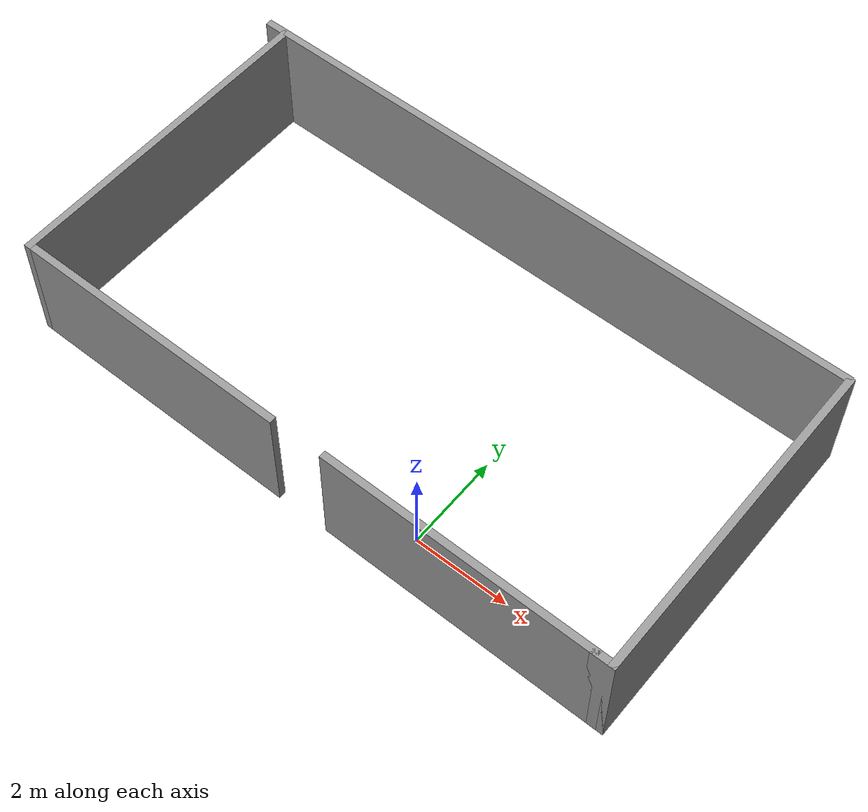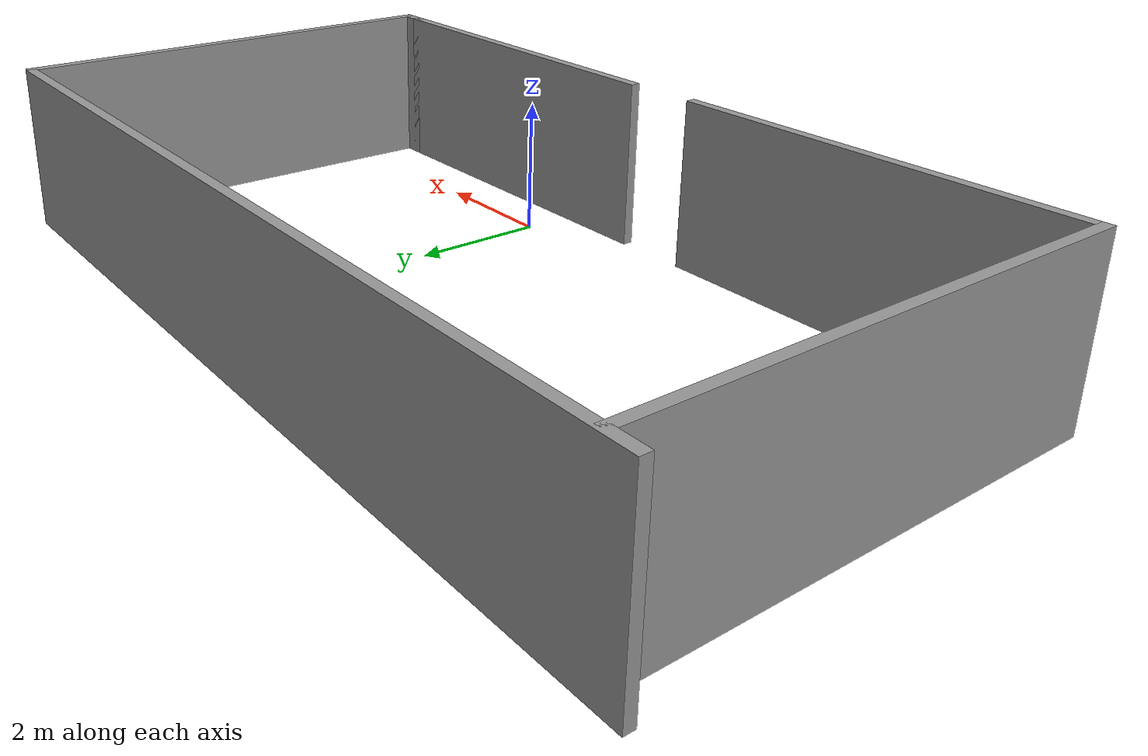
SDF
<?xml version='1.0'?>
<sdf version='1.7'>
  <model name='KIBAN'>
    <pose>-2.06273 2.61774 0 0 -0 0</pose>
    <link name='Wall_10'>
      <collision name='Wall_10_Collision'>
        <geometry>
          <box>
            <size>7 0.15 2.5</size>
          </box>
        </geometry>
        <pose>0 0 1.25 0 -0 0</pose>
      </collision>
      <visual name='Wall_10_Visual'>
        <pose>0 0 1.25 0 -0 0</pose>
        <geometry>
          <box>
            <size>7 0.15 2.5</size>
          </box>
        </geometry>
        <material>
          <script>
            <uri>file://media/materials/scripts/gazebo.material</uri>
            <name>Gazebo/Grey</name>
          </script>
          <ambient>1 1 1 1</ambient>
        </material>
        <meta>
          <layer>0</layer>
        </meta>
      </visual>
      <pose>-6.32602 -0.02313 0 0 -0 -1.5708</pose>
    </link>
    <link name='Wall_11'>
      <collision name='Wall_11_Collision'>
        <geometry>
          <box>
            <size>6 0.15 2.5</size>
          </box>
        </geometry>
        <pose>0 0 1.25 0 -0 0</pose>
      </collision>
      <visual name='Wall_11_Visual'>
        <pose>0 0 1.25 0 -0 0</pose>
        <geometry>
          <box>
            <size>6 0.15 2.5</size>
          </box>
        </geometry>
        <material>
          <script>
            <uri>file://media/materials/scripts/gazebo.material</uri>
            <name>Gazebo/Grey</name>
          </script>
          <ambient>1 1 1 1</ambient>
        </material>
        <meta>
          <layer>0</layer>
        </meta>
      </visual>
      <pose>-3.40102 -3.44813 0 0 -0 0</pose>
    </link>
    <link name='Wall_13'>
      <collision name='Wall_13_Collision'>
        <geometry>
          <box>
            <size>5.75 0.15 2.5</size>
          </box>
        </geometry>
        <pose>0 0 1.25 0 -0 0</pose>
      </collision>
      <visual name='Wall_13_Visual'>
        <pose>0 0 1.25 0 -0 0</pose>
        <geometry>
          <box>
            <size>5.75 0.15 2.5</size>
          </box>
        </geometry>
        <material>
          <script>
            <uri>file://media/materials/scripts/gazebo.material</uri>
            <name>Gazebo/Grey</name>
          </script>
          <ambient>1 1 1 1</ambient>
        </material>
        <meta>
          <layer>0</layer>
        </meta>
      </visual>
      <pose>3.55194 -3.42166 0 0 -0 0</pose>
    </link>
    <link name='Wall_14'>
      <collision name='Wall_14_Collision'>
        <geometry>
          <box>
            <size>0.5 0.15 2.5</size>
          </box>
        </geometry>
        <pose>0 0 1.25 0 -0 0</pose>
      </collision>
      <visual name='Wall_14_Visual'>
        <pose>0 0 1.25 0 -0 0</pose>
        <geometry>
          <box>
            <size>0.5 0.15 2.5</size>
          </box>
        </geometry>
        <material>
          <script>
            <uri>file://media/materials/scripts/gazebo.material</uri>
            <name>Gazebo/Grey</name>
          </script>
          <ambient>1 1 1 1</ambient>
        </material>
        <meta>
          <layer>0</layer>
        </meta>
      </visual>
      <pose>6.52694 -3.42166 0 0 -0 0</pose>
    </link>
    <link name='Wall_15'>
      <collision name='Wall_15_Collision'>
        <geometry>
          <box>
            <size>7 0.15 2.5</size>
          </box>
        </geometry>
        <pose>0 0 1.25 0 -0 0</pose>
      </collision>
      <visual name='Wall_15_Visual'>
        <pose>0 0 1.25 0 -0 0</pose>
        <geometry>
          <box>
            <size>7 0.15 2.5</size>
          </box>
        </geometry>
        <material>
          <script>
            <uri>file://media/materials/scripts/gazebo.material</uri>
            <name>Gazebo/Grey</name>
          </script>
          <ambient>1 1 1 1</ambient>
        </material>
        <meta>
          <layer>0</layer>
        </meta>
      </visual>
      <pose>6.70194 0.003341 0 0 -0 1.5708</pose>
    </link>
    <link name='Wall_6'>
      <collision name='Wall_6_Collision'>
        <geometry>
          <box>
            <size>13.5 0.15 2.5</size>
          </box>
        </geometry>
        <pose>0 0 1.25 0 -0 0</pose>
      </collision>
      <visual name='Wall_6_Visual'>
        <pose>0 0 1.25 0 -0 0</pose>
        <geometry>
          <box>
            <size>13.5 0.15 2.5</size>
          </box>
        </geometry>
        <material>
          <script>
            <uri>file://media/materials/scripts/gazebo.material</uri>
            <name>Gazebo/Grey</name>
          </script>
          <ambient>1 1 1 1</ambient>
        </material>
        <meta>
          <layer>0</layer>
        </meta>
      </visual>
      <pose>-0.026944 3.44813 0 0 -0 0</pose>
    </link>
    <static>1</static>
  </model>
</sdf>
